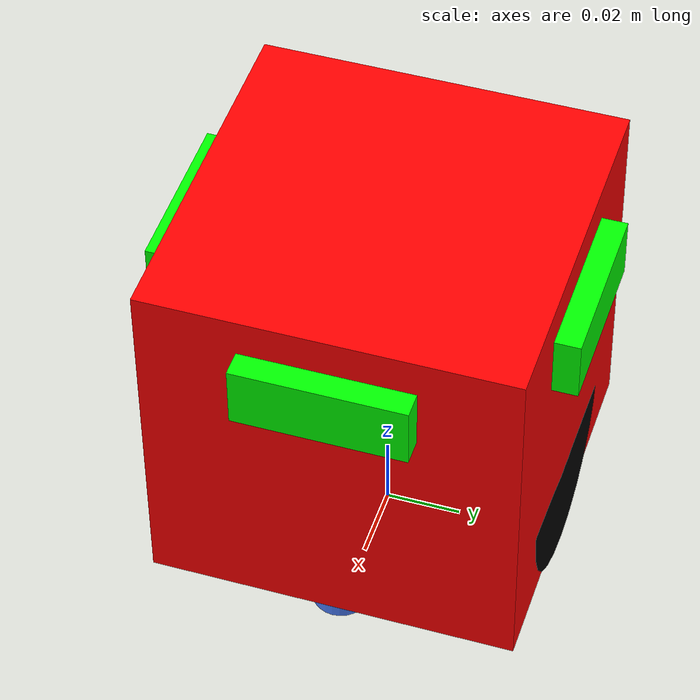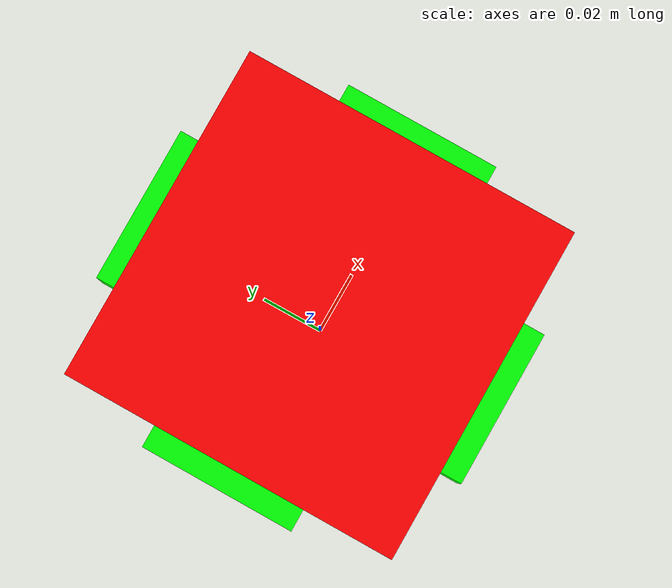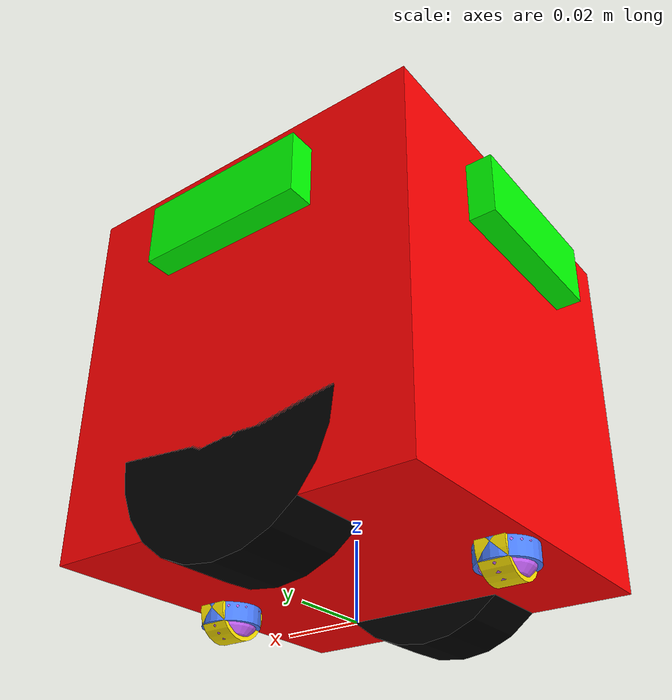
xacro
<?xml version="1.0"?>

<robot xmlns:xacro="http://www.ros.org/wiki/xacro" name="mini_pi">

  <!-- Global Material Definitions -->
  <material name="Red">
    <color rgba="1.0 0.0 0.0 1.0"/>
  </material>

  <material name="Gray">
    <color rgba="0.6 0.6 0.6 1"/>
  </material>

  <material name="Blue">
    <color rgba="0.3 0.5 1.0 1.0"/>
  </material>

  <material name="Black">
    <color rgba="0.0 0.0 0.0 1.0"/>
  </material>

  <material name="Green">
    <color rgba="0.0 1.0 0.0 1.0"/>
  </material>

  <material name="Yellow">
    <color rgba="1.0 0.9 0.0 1.0"/>
  </material>

  <material name="Orange">
    <color rgba="1.0 0.5 0 0.8"/>
  </material>

  <material name="Pink">
    <color rgba="0.8 0.4 1.0 1.0"/>
  </material>

  <!-- Properties -->
  <xacro:property name="base_size_x" value="0.097"/>
  <xacro:property name="base_size_y" value="0.097"/>
  <xacro:property name="base_size_z" value="0.097"/>
  <xacro:property name="base_mass" value="1.0"/>
  <xacro:property name="wheel_radius" value="0.03"/>
  <xacro:property name="wheel_width" value="0.02"/>
  <xacro:property name="wheel_mass" value="0.05"/>
  <xacro:property name="ultrasonic_x" value="0.02"/>
  <xacro:property name="ultrasonic_y" value="0.02"/>
  <xacro:property name="ultrasonic_z" value="0.01"/>

  <!-- ==== Macros ==== -->
  <!-- ===== Macros for squared component ==== -->
  <xacro:macro name="square_link" params="name size_x size_y size_z material mass parent_link xyz rpy joint_type">
    <!-- Squared link -->
    <link name="${name}">
      <visual>
        <origin xyz="0 0 0" rpy="0 0 0"/>
        <geometry>
          <box size="${size_x} ${size_y} ${size_z}"/>
        </geometry>
        <material name="${material}"/>
      </visual>
      <collision>
        <origin xyz="0 0 0" rpy="0 0 0"/>
        <geometry>
          <box size="${size_x} ${size_y} ${size_z}"/>
        </geometry>
      </collision>
      <inertial>
        <mass value="${mass}" />
        <origin xyz="0 0 0" rpy="0 0 0"/>
        <inertia
          ixx="${(1/12.0)*mass*(size_y*size_y + size_z*size_z)}"
          ixy="0.0"
          ixz="0.0"
          iyy="${(1/12.0)*mass*(size_x*size_x + size_z*size_z)}"
          iyz="0.0"
          izz="${(1/12.0)*mass*(size_x*size_x + size_y*size_y)}" />
      </inertial>
    </link>
    <!-- Squared joint -->
    <joint name="${name}_joint" type="${joint_type}">
      <origin xyz="${xyz}" rpy="${rpy}"/>
      <parent link="${parent_link}"/>
      <child link="${name}"/>
      <xacro:if value="${joint_type != 'fixed'}">
        <axis xyz="0 0 1"/>
      </xacro:if>
    </joint>
  </xacro:macro>

  <!-- ==== Macro for Cylindrical Component ==== -->
  <xacro:macro name="cylinder_link" params="name radius length material mass parent_link xyz rpy joint_type axis">
    <link name="${name}">
      <visual>
        <origin xyz="0 0 0" rpy="1.5708 0 0" />
        <geometry>
          <cylinder radius="${radius}" length="${length}" />
        </geometry>
        <material name="${material}">
        </material>
      </visual>
      <collision>
        <origin xyz="0 0 0" rpy="1.5708 0 0" />
        <geometry>
          <cylinder radius="${radius}" length="${length}" />
        </geometry>
      </collision>
      <inertial>
        <mass value="${mass}" />
        <origin xyz="0 0 0" rpy="0 0 0"/>
        <inertia ixx="${(1.0/12.0)*mass*(3.0*(radius*radius) + (length*length))}"
                 ixy="0"
                 ixz="0"
                 iyy="${(1.0/2.0) *mass*(radius*radius)}"
                 iyz="0"
                 izz="${(1.0/12.0)*mass*(3.0*(radius*radius) + (length*length))}"/>
      </inertial>
    </link>
    <!-- Cylinder joint -->
    <joint name="${name}_joint" type="${joint_type}">
      <origin xyz="${xyz}" rpy="${rpy}"/>
      <parent link="${parent_link}" />
      <child link="${name}" />
      <axis xyz="${axis}" />
    </joint>
  </xacro:macro>

  <!-- ==== Macro for Caster Wheel ==== -->
  <xacro:macro name="caster_wheel" params="name pos_x pos_y pos_z color_yaw color_pitch color_roll parent_link mass radius length">
    <!-- Caster Wheel Link (Yaw) -->
    <link name="${name}_yaw_link">
      <visual>
        <origin xyz="0 0 0" rpy="0 0 0"/>
        <geometry>
          <cylinder length="${length}" radius="${radius}"/>
        </geometry>
        <material name="${color_yaw}"/>
      </visual>
      <collision>
        <origin xyz="0 0 0" rpy="0 0 0"/>
        <geometry>
          <cylinder length="${length}" radius="${radius}"/>
        </geometry>
      </collision>
      <inertial>
        <origin xyz="0 0 0" rpy="0 0 0"/>
        <mass value="${mass}"/>
        <inertia
          ixx="${(1.0/4.0) * mass * (radius * radius) + (1.0/12.0) * mass * (length * length)}"
          ixy="0.0"
          ixz="0.0"
          iyy="${(1.0/4.0) * mass * (radius * radius) + (1.0/12.0) * mass * (length * length)}"
          iyz="0.0"
          izz="${(1.0/2.0) * mass * (radius * radius)}"/>
      </inertial>
    </link>
    <!-- Yaw Joint -->
    <joint name="${name}_yaw_joint" type="continuous">
      <origin rpy="0 0 0" xyz="${pos_x} ${pos_y} ${pos_z}" />
      <parent link="${parent_link}"/>
      <child link="${name}_yaw_link"/>
      <axis xyz="0 0 1"/>
    </joint>

    <!-- Caster Wheel Link (Roll) -->
    <link name="${name}_roll_link">
      <visual>
        <origin xyz="0 0 0" rpy="0 1.5708 0"/>
        <geometry>
          <cylinder length="${length}" radius="${radius}"/>
        </geometry>
        <material name="${color_roll}"/>
      </visual>
      <collision>
        <origin xyz="0 0 0" rpy="0 1.5708 0"/>
        <geometry>
          <cylinder length="${length}" radius="${radius}"/>
        </geometry>
      </collision>
      <inertial>
        <origin xyz="0 0 0" rpy="0 1.5708 0"/>
        <mass value="${mass}"/>
        <inertia
          ixx="${(1.0/4.0) * mass * (radius * radius) + (1.0/12.0) * mass * (length * length)}"
          ixy="0.0"
          ixz="0.0"
          iyy="${(1.0/4.0) * mass * (radius * radius) + (1.0/12.0) * mass * (length * length)}"
          iyz="0.0"
          izz="${(1.0/2.0) * mass * (radius * radius)}"/>
      </inertial>
    </link>
    <!-- Roll Joint -->
    <joint name="${name}_roll_joint" type="continuous">
      <origin rpy="0 0 0" xyz="0 0 0" />
      <parent link="${name}_yaw_link"/>
      <child link="${name}_roll_link"/>
      <axis xyz="1 0 0"/>
    </joint>

    <!-- Caster Wheel Link (Pitch) -->
    <link name="${name}_pitch_link">
      <visual>
        <origin xyz="0 0 0" rpy="0 0 0"/>
        <geometry>
          <sphere radius="${radius}" />
        </geometry>
        <material name="${color_pitch}"/>
      </visual>
      <collision>
        <origin xyz="0 0 0" rpy="0 0 0"/>
        <geometry>
          <sphere radius="${radius}"/>
        </geometry>
      </collision>
      <inertial>
        <origin xyz="0 0 0" rpy="0 0 0"/>
        <mass value="${mass}"/>
        <inertia
          ixx="${(2.0/5.0) * mass * (radius * radius)}"
          ixy="0.0"
          ixz="0.0"
          iyy="${(2.0/5.0) * mass * (radius * radius)}"
          iyz="0.0"
          izz="${(2.0/5.0) * mass * (radius * radius)}"/>
      </inertial>
    </link>
    <!-- Roll Joint -->
    <joint name="${name}_pitch_joint" type="continuous">
      <origin rpy="0 0 0" xyz="0 0 0" />
      <parent link="${name}_roll_link"/>
      <child link="${name}_pitch_link"/>
      <axis xyz="0 1 0"/>
    </joint>
  </xacro:macro>

  <!-- =     Robot Model     = -->
  <link name="base_footprint"/>
  <joint name="footprint_to_base" type="fixed">
    <parent link="base_footprint"/>
    <child  link="base_link"/>
    <origin xyz="0 0 0.0585" rpy="0 0 0"/>
  </joint>

  <!-- Define the base link-->
  <link name="base_link">
    <!-- Placeholder for base_link; no geometry or inertial properties defined -->
  </link>

  <!-- ==== Create Chassis ====  -->
  <xacro:square_link
    name="chassis"
    size_x="${base_size_x}"
    size_y="${base_size_y}"
    size_z="${base_size_z}"
    material="Red"
    mass="${base_mass}"
    parent_link="base_link"
    xyz="0 0 0"
    rpy="0 0 0"
    joint_type="fixed"/>

  <!-- ==== Wheels ==== -->
  <xacro:cylinder_link
    name="wheel_right"
    radius="${wheel_radius}"
    length="${wheel_width}"
    material="Black"
    mass="${wheel_mass}"
    parent_link="base_link"
    xyz="0 -0.0385 -0.0275"
    rpy="0 0 0"
    joint_type="continuous"
    axis="0 1 0"/>

  <xacro:cylinder_link
    name="wheel_left"
    radius="${wheel_radius}"
    length="${wheel_width}"
    material="Black"
    mass="${wheel_mass}"
    parent_link="base_link"
    xyz="0 0.0385 -0.0275"
    rpy="0 0 0"
    joint_type="continuous"
    axis="0 1 0"/>

  <!-- ==== Ultrasonic Senors ==== -->
   <xacro:square_link
    name="ultrasonic_sensor_1"
    size_x="0.0135"
    size_y="0.045"
    size_z="0.0165"
    material="Green"
    mass="0.001"
    parent_link="base_link"
    xyz="0.0485 0 0.0300"
    rpy="0 0 0"
    joint_type="fixed"/>

    <xacro:square_link
    name="ultrasonic_sensor_2"
    size_x="0.0135"
    size_y="0.045"
    size_z="0.0165"
    material="Green"
    mass="0.001"
    parent_link="base_link"
    xyz="0 -0.0485 0.0300"
    rpy="0 0 4.7123"
    joint_type="fixed"/>

    <xacro:square_link
    name="ultrasonic_sensor_3"
    size_x="0.0135"
    size_y="0.045"
    size_z="0.0165"
    material="Green"
    mass="0.001"
    parent_link="base_link"
    xyz="-0.0485 0 0.0300"
    rpy="0 0 3.14159"
    joint_type="fixed"/>

    <xacro:square_link
    name="ultrasonic_sensor_4"
    size_x="0.0135"
    size_y="0.045"
    size_z="0.0165"
    material="Green"
    mass="0.001"
    parent_link="base_link"
    xyz="0 0.0485 0.0300"
    rpy="0 0 1.5708"
    joint_type="fixed"/>

  <!-- ==== Caster Wheels ==== -->
  <xacro:caster_wheel
    name="front_caster"
    parent_link="base_link"
    pos_x="0.0400" pos_y="0" pos_z="-0.0495"
    color_roll="Yellow"
    color_pitch="Pink"
    color_yaw="Blue"
    length="0.0075"
    radius="0.0075"
    mass="0.0002"/>

  <xacro:caster_wheel
    name="back_caster"
    parent_link="base_link"
    pos_x="-0.0400" pos_y="0" pos_z="-0.0495"
    color_roll="Yellow"
    color_pitch="Pink"
    color_yaw="Blue"
    length="0.0075"
    radius="0.0075"
    mass="0.0002"/>

</robot>
